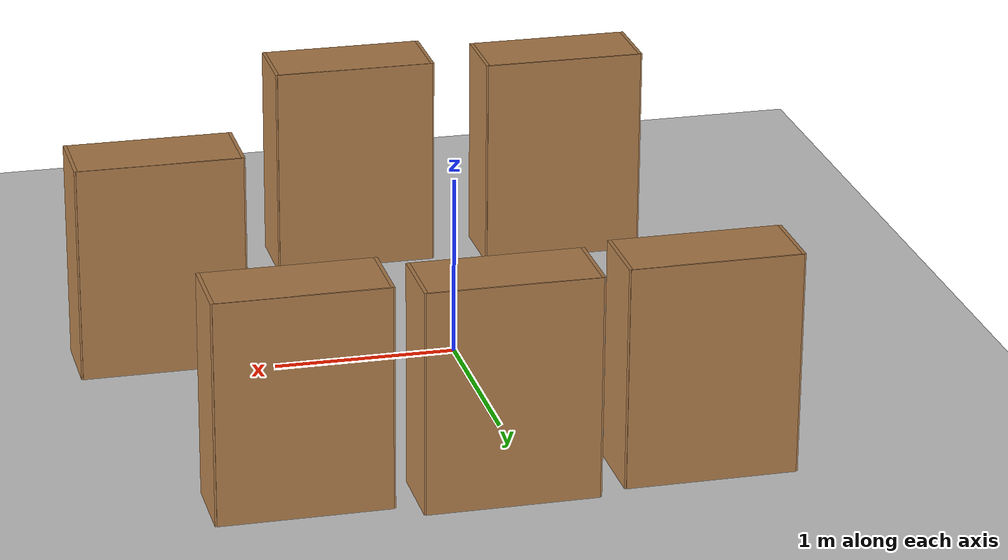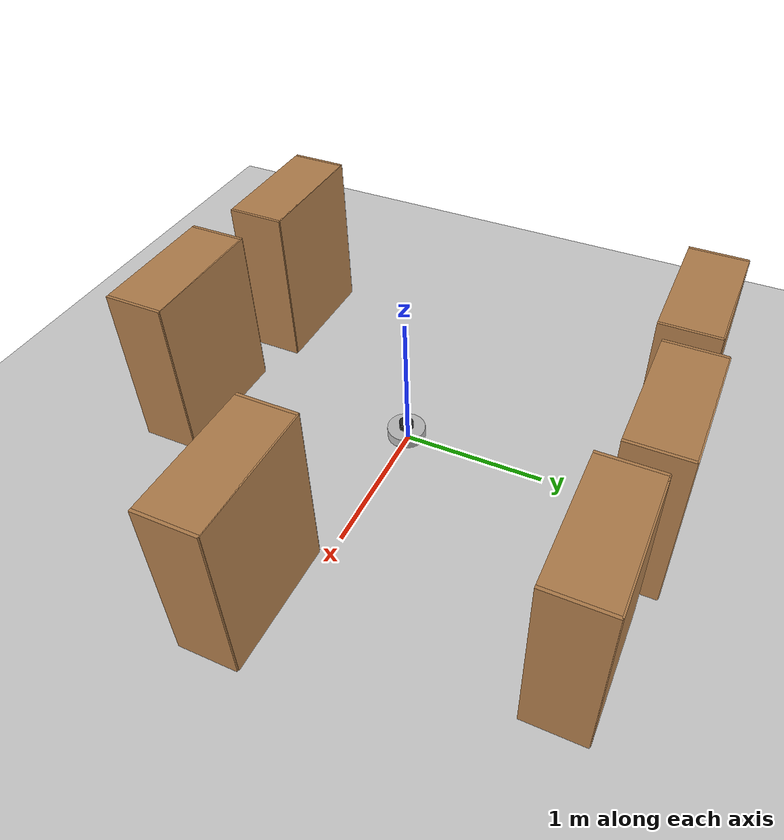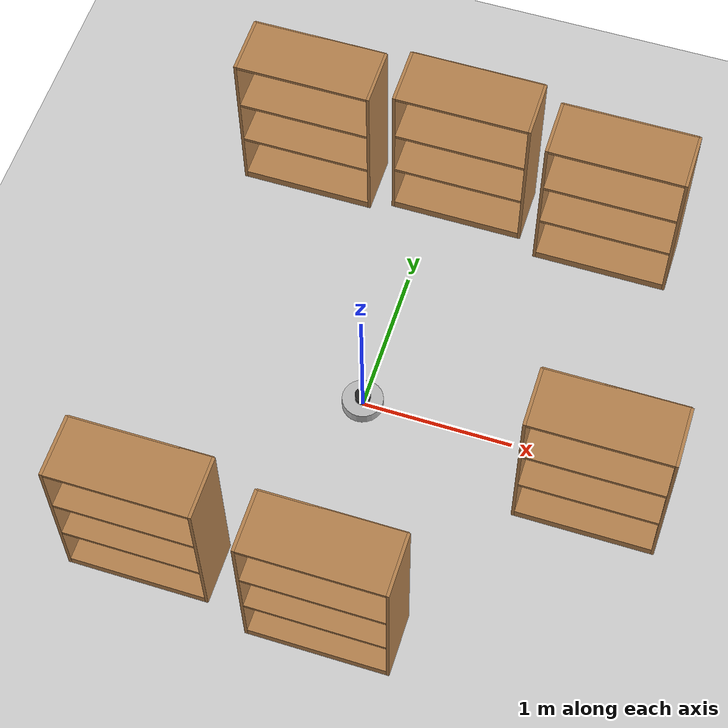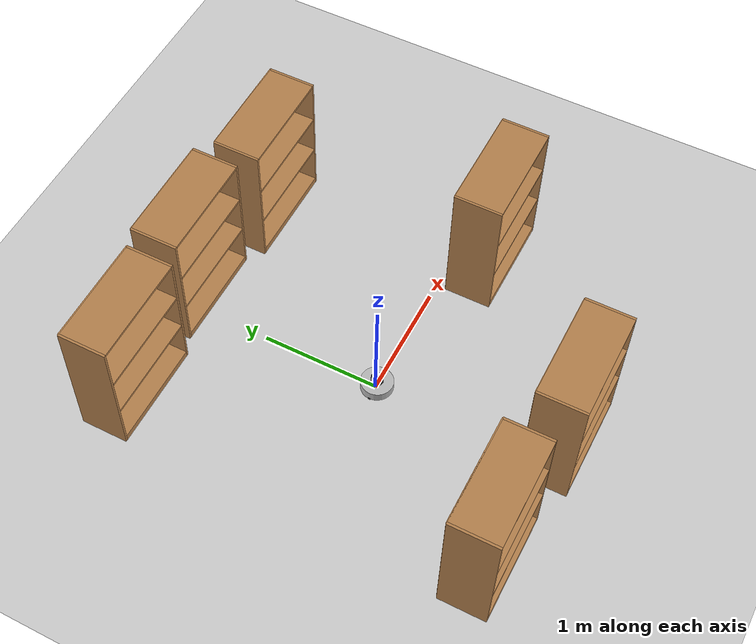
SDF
<sdf version="1.7">
 <world name="default">
  <light name="sun" type="directional">
   <pose>0 0 10 0 -0 0</pose>
   <diffuse>0.8 0.8 0.8 1</diffuse>
   <specular>0.2 0.2 0.2 1</specular>
   <attenuation>
    <range>1000</range>
    <constant>0.9</constant>
    <linear>0.01</linear>
    <quadratic>0.001</quadratic>
   </attenuation>
   <direction>-0.5 0.1 -0.9</direction>
   <spot><inner_angle>0</inner_angle><outer_angle>0</outer_angle><falloff>0</falloff></spot>
  </light>
  <model name="ground_plane">
   <static>1</static>
   <link name="link">
    <collision name="collision">
     <geometry><plane><normal>0 0 1</normal><size>100 100</size></plane></geometry>
     <surface><friction><ode><mu>100</mu><mu2>50</mu2></ode></friction></surface>
    </collision>
    <visual name="visual">
     <cast_shadows>0</cast_shadows>
     <geometry><plane><normal>0 0 1</normal><size>100 100</size></plane></geometry>
     <material>
      <script><uri>file://media/materials/scripts/gazebo.material</uri><name>Gazebo/Grey</name></script>
     </material>
    </visual>
   </link>
  </model>
  <gravity>0 0 -9.8</gravity>
  <magnetic_field>6e-06 2.3e-05 -4.2e-05</magnetic_field>
  <atmosphere type="adiabatic"/>
  <physics type="ode">
   <max_step_size>0.001</max_step_size>
   <real_time_factor>1</real_time_factor>
   <real_time_update_rate>1000</real_time_update_rate>
  </physics>
  <scene><ambient>0.4 0.4 0.4 1</ambient><background>0.7 0.7 0.7 1</background><shadows>1</shadows></scene>
  <audio><device>default</device></audio>
  <spherical_coordinates>
   <surface_model>EARTH_WGS84</surface_model>
   <latitude_deg>0</latitude_deg>
   <longitude_deg>0</longitude_deg>
   <elevation>0</elevation>
   <heading_deg>0</heading_deg>
  </spherical_coordinates>
  <model name="my_robot">
   <link name="base_link">
    <inertial>
     <pose>0 0.009931 0.019586 0 -0 0</pose>
     <mass>0.725</mass>
     <inertia>
      <ixx>0.00386635</ixx>
      <ixy>0</ixy>
      <ixz>0</ixz>
      <iyy>0.00668826</iyy>
      <iyz>-2.97931e-06</iyz>
      <izz>0.00761198</izz>
     </inertia>
    </inertial>
    <collision name="base_link_fixed_joint_lump__chassis_collision">
     <pose>0 0 0.02 0 -0 0</pose>
     <geometry><cylinder><length>0.078</length><radius>0.135</radius></cylinder></geometry>
    </collision>
    <collision name="base_link_fixed_joint_lump__caster_wheel_front_collision_1">
     <pose>0.12 0 -0.019 0 -0 0</pose>
     <geometry><sphere><radius>0.019</radius></sphere></geometry>
     <surface><friction><ode><mu>0.001</mu><mu2>0.001</mu2></ode></friction></surface>
    </collision>
    <collision name="base_link_fixed_joint_lump__caster_wheel_rear_collision_2">
     <pose>-0.12 0 -0.019 0 -0 0</pose>
     <geometry><sphere><radius>0.019</radius></sphere></geometry>
     <surface><friction><ode><mu>0.001</mu><mu2>0.001</mu2></ode></friction></surface>
    </collision>
    <collision name="base_link_fixed_joint_lump__lidar_link_collision_3">
     <pose>0 0 0.08 0 -0 0</pose>
     <geometry><cylinder><length>0.055</length><radius>0.0508</radius></cylinder></geometry>
    </collision>
    <visual name="base_link_fixed_joint_lump__chassis_visual">
     <pose>0 0 0.02 0 -0 0</pose>
     <geometry><cylinder><length>0.078</length><radius>0.135</radius></cylinder></geometry>
    </visual>
    <visual name="base_link_fixed_joint_lump__caster_wheel_front_visual_1">
     <pose>0.12 0 -0.019 0 -0 0</pose>
     <geometry><sphere><radius>0.019</radius></sphere></geometry>
     <material>
      <script><name>Gazebo/Black</name><uri>file://media/materials/scripts/gazebo.material</uri></script>
     </material>
    </visual>
    <visual name="base_link_fixed_joint_lump__caster_wheel_rear_visual_2">
     <pose>-0.12 0 -0.019 0 -0 0</pose>
     <geometry><sphere><radius>0.019</radius></sphere></geometry>
     <material>
      <script><name>Gazebo/Black</name><uri>file://media/materials/scripts/gazebo.material</uri></script>
     </material>
    </visual>
    <visual name="base_link_fixed_joint_lump__lidar_link_visual_3">
     <pose>0 0 0.08 0 -0 0</pose>
     <geometry><cylinder><length>0.055</length><radius>0.0508</radius></cylinder></geometry>
     <material>
      <script><name>Gazebo/Black</name><uri>file://media/materials/scripts/gazebo.material</uri></script>
     </material>
    </visual>
    <sensor name="lidar" type="ray">
     <always_on>1</always_on>
     <visualize>1</visualize>
     <update_rate>5</update_rate>
     <ray>
      <scan>
       <horizontal>
        <samples>360</samples>
        <resolution>1</resolution>
        <min_angle>0</min_angle>
        <max_angle>6.28</max_angle>
       </horizontal>
       <vertical><samples>1</samples><min_angle>0</min_angle><max_angle>0</max_angle></vertical>
      </scan>
      <range><min>0.12</min><max>3.5</max><resolution>0.015</resolution></range>
      <noise><type>gaussian</type><mean>0</mean><stddev>0.01</stddev></noise>
     </ray>
     <plugin name="scan" filename="libgazebo_ros_ray_sensor.so">
      <ros><remapping>~/out:=scan</remapping></ros>
      <output_type>sensor_msgs/LaserScan</output_type>
      <frame_name>lidar_link</frame_name>
     </plugin>
     <pose>0 0 0.08 0 -0 0</pose>
    </sensor>
   </link>
   <joint name="left_wheel_joint" type="revolute">
    <pose relative_to="base_link">0 0.078 0 -1.5708 0 0</pose>
    <parent>base_link</parent>
    <child>left_wheel</child>
    <axis>
     <xyz>0 0 1</xyz>
     <limit><lower>-1e+16</lower><upper>1e+16</upper></limit>
     <dynamics><spring_reference>0</spring_reference><spring_stiffness>0</spring_stiffness></dynamics>
    </axis>
   </joint>
   <link name="left_wheel">
    <pose relative_to="left_wheel_joint">0 0 0 0 -0 0</pose>
    <inertial>
     <mass>0.1</mass>
     <inertia>
      <ixx>4.05333e-05</ixx>
      <ixy>0</ixy>
      <ixz>0</ixz>
      <iyy>4.05333e-05</iyy>
      <iyz>0</iyz>
      <izz>8e-05</izz>
     </inertia>
    </inertial>
    <collision name="left_wheel_collision">
     <geometry><cylinder><length>0.008</length><radius>0.04</radius></cylinder></geometry>
    </collision>
    <visual name="left_wheel_visual">
     <geometry><cylinder><length>0.008</length><radius>0.04</radius></cylinder></geometry>
     <material>
      <script><name>Gazebo/Black</name><uri>file://media/materials/scripts/gazebo.material</uri></script>
     </material>
    </visual>
   </link>
   <joint name="right_wheel_joint" type="revolute">
    <pose relative_to="base_link">0 -0.078 0 1.5708 -0 0</pose>
    <parent>base_link</parent>
    <child>right_wheel</child>
    <axis>
     <xyz>0 0 -1</xyz>
     <limit><lower>-1e+16</lower><upper>1e+16</upper></limit>
     <dynamics><spring_reference>0</spring_reference><spring_stiffness>0</spring_stiffness></dynamics>
    </axis>
   </joint>
   <link name="right_wheel">
    <pose relative_to="right_wheel_joint">0 0 0 0 -0 0</pose>
    <inertial>
     <mass>0.05</mass>
     <inertia>
      <ixx>2.02667e-05</ixx>
      <ixy>0</ixy>
      <ixz>0</ixz>
      <iyy>2.02667e-05</iyy>
      <iyz>0</iyz>
      <izz>4e-05</izz>
     </inertia>
    </inertial>
    <collision name="right_wheel_collision">
     <geometry><cylinder><length>0.008</length><radius>0.04</radius></cylinder></geometry>
    </collision>
    <visual name="right_wheel_visual">
     <geometry><cylinder><length>0.008</length><radius>0.04</radius></cylinder></geometry>
     <material>
      <script><name>Gazebo/Black</name><uri>file://media/materials/scripts/gazebo.material</uri></script>
     </material>
    </visual>
   </link>
   <static>0</static>
   <plugin name="gazebo_ros2_control" filename="libgazebo_ros2_control.so">
    <parameters>/home/asaf/ros2_ws/install/navigation_diffbot/share/navigation_diffbot/config/my_controllers3.yaml</parameters>
   </plugin>
   <pose>0.001074 -0.011462 0.04 -1e-06 0.016691 0.000367</pose>
  </model>
  <model name="bookshelf">
   <static>1</static>
   <link name="link">
    <inertial><mass>1</mass></inertial>
    <collision name="back">
     <pose>0 0.005 0.6 0 -0 0</pose>
     <geometry><box><size>0.9 0.01 1.2</size></box></geometry>
    </collision>
    <visual name="visual1">
     <pose>0 0.005 0.6 0 -0 0</pose>
     <geometry><box><size>0.9 0.01 1.2</size></box></geometry>
     <material>
      <script><uri>file://media/materials/scripts/gazebo.material</uri><name>Gazebo/Wood</name></script>
     </material>
    </visual>
    <collision name="left_side">
     <pose>0.45 -0.195 0.6 0 -0 0</pose>
     <geometry><box><size>0.02 0.4 1.2</size></box></geometry>
    </collision>
    <visual name="visual2">
     <pose>0.45 -0.195 0.6 0 -0 0</pose>
     <geometry><box><size>0.02 0.4 1.2</size></box></geometry>
     <material>
      <script><uri>file://media/materials/scripts/gazebo.material</uri><name>Gazebo/Wood</name></script>
     </material>
    </visual>
    <collision name="right_side">
     <pose>-0.45 -0.195 0.6 0 -0 0</pose>
     <geometry><box><size>0.02 0.4 1.2</size></box></geometry>
    </collision>
    <visual name="visual3">
     <pose>-0.45 -0.195 0.6 0 -0 0</pose>
     <geometry><box><size>0.02 0.4 1.2</size></box></geometry>
     <material>
      <script><uri>file://media/materials/scripts/gazebo.material</uri><name>Gazebo/Wood</name></script>
     </material>
    </visual>
    <collision name="bottom">
     <pose>0 -0.195 0.03 0 -0 0</pose>
     <geometry><box><size>0.88 0.4 0.06</size></box></geometry>
    </collision>
    <visual name="visual4">
     <pose>0 -0.195 0.03 0 -0 0</pose>
     <geometry><box><size>0.88 0.4 0.06</size></box></geometry>
     <material>
      <script><uri>file://media/materials/scripts/gazebo.material</uri><name>Gazebo/Wood</name></script>
     </material>
    </visual>
    <collision name="top">
     <pose>0 -0.195 1.19 0 -0 0</pose>
     <geometry><box><size>0.88 0.4 0.02</size></box></geometry>
    </collision>
    <visual name="visual5">
     <pose>0 -0.195 1.19 0 -0 0</pose>
     <geometry><box><size>0.88 0.4 0.02</size></box></geometry>
     <material>
      <script><uri>file://media/materials/scripts/gazebo.material</uri><name>Gazebo/Wood</name></script>
     </material>
    </visual>
    <collision name="low_shelf">
     <pose>0 -0.195 0.43 0 -0 0</pose>
     <geometry><box><size>0.88 0.4 0.02</size></box></geometry>
    </collision>
    <visual name="visual6">
     <pose>0 -0.195 0.43 0 -0 0</pose>
     <geometry><box><size>0.88 0.4 0.02</size></box></geometry>
     <material>
      <script><uri>file://media/materials/scripts/gazebo.material</uri><name>Gazebo/Wood</name></script>
     </material>
    </visual>
    <collision name="high_shelf">
     <pose>0 -0.195 0.8 0 -0 0</pose>
     <geometry><box><size>0.88 0.4 0.02</size></box></geometry>
    </collision>
    <visual name="visual7">
     <pose>0 -0.195 0.8 0 -0 0</pose>
     <geometry><box><size>0.88 0.4 0.02</size></box></geometry>
     <material>
      <script><uri>file://media/materials/scripts/gazebo.material</uri><name>Gazebo/Wood</name></script>
     </material>
    </visual>
   </link>
   <pose>0.168341 1.94579 0 0 -0 0</pose>
  </model>
  <model name="bookshelf_0">
   <static>1</static>
   <link name="link">
    <inertial><mass>1</mass></inertial>
    <collision name="back">
     <pose>0 0.005 0.6 0 -0 0</pose>
     <geometry><box><size>0.9 0.01 1.2</size></box></geometry>
    </collision>
    <visual name="visual1">
     <pose>0 0.005 0.6 0 -0 0</pose>
     <geometry><box><size>0.9 0.01 1.2</size></box></geometry>
     <material>
      <script><uri>file://media/materials/scripts/gazebo.material</uri><name>Gazebo/Wood</name></script>
     </material>
    </visual>
    <collision name="left_side">
     <pose>0.45 -0.195 0.6 0 -0 0</pose>
     <geometry><box><size>0.02 0.4 1.2</size></box></geometry>
    </collision>
    <visual name="visual2">
     <pose>0.45 -0.195 0.6 0 -0 0</pose>
     <geometry><box><size>0.02 0.4 1.2</size></box></geometry>
     <material>
      <script><uri>file://media/materials/scripts/gazebo.material</uri><name>Gazebo/Wood</name></script>
     </material>
    </visual>
    <collision name="right_side">
     <pose>-0.45 -0.195 0.6 0 -0 0</pose>
     <geometry><box><size>0.02 0.4 1.2</size></box></geometry>
    </collision>
    <visual name="visual3">
     <pose>-0.45 -0.195 0.6 0 -0 0</pose>
     <geometry><box><size>0.02 0.4 1.2</size></box></geometry>
     <material>
      <script><uri>file://media/materials/scripts/gazebo.material</uri><name>Gazebo/Wood</name></script>
     </material>
    </visual>
    <collision name="bottom">
     <pose>0 -0.195 0.03 0 -0 0</pose>
     <geometry><box><size>0.88 0.4 0.06</size></box></geometry>
    </collision>
    <visual name="visual4">
     <pose>0 -0.195 0.03 0 -0 0</pose>
     <geometry><box><size>0.88 0.4 0.06</size></box></geometry>
     <material>
      <script><uri>file://media/materials/scripts/gazebo.material</uri><name>Gazebo/Wood</name></script>
     </material>
    </visual>
    <collision name="top">
     <pose>0 -0.195 1.19 0 -0 0</pose>
     <geometry><box><size>0.88 0.4 0.02</size></box></geometry>
    </collision>
    <visual name="visual5">
     <pose>0 -0.195 1.19 0 -0 0</pose>
     <geometry><box><size>0.88 0.4 0.02</size></box></geometry>
     <material>
      <script><uri>file://media/materials/scripts/gazebo.material</uri><name>Gazebo/Wood</name></script>
     </material>
    </visual>
    <collision name="low_shelf">
     <pose>0 -0.195 0.43 0 -0 0</pose>
     <geometry><box><size>0.88 0.4 0.02</size></box></geometry>
    </collision>
    <visual name="visual6">
     <pose>0 -0.195 0.43 0 -0 0</pose>
     <geometry><box><size>0.88 0.4 0.02</size></box></geometry>
     <material>
      <script><uri>file://media/materials/scripts/gazebo.material</uri><name>Gazebo/Wood</name></script>
     </material>
    </visual>
    <collision name="high_shelf">
     <pose>0 -0.195 0.8 0 -0 0</pose>
     <geometry><box><size>0.88 0.4 0.02</size></box></geometry>
    </collision>
    <visual name="visual7">
     <pose>0 -0.195 0.8 0 -0 0</pose>
     <geometry><box><size>0.88 0.4 0.02</size></box></geometry>
     <material>
      <script><uri>file://media/materials/scripts/gazebo.material</uri><name>Gazebo/Wood</name></script>
     </material>
    </visual>
   </link>
   <pose>1.20812 1.83612 0 0 -0 0</pose>
  </model>
  <model name="bookshelf_1">
   <static>1</static>
   <link name="link">
    <inertial><mass>1</mass></inertial>
    <collision name="back">
     <pose>0 0.005 0.6 0 -0 0</pose>
     <geometry><box><size>0.9 0.01 1.2</size></box></geometry>
    </collision>
    <visual name="visual1">
     <pose>0 0.005 0.6 0 -0 0</pose>
     <geometry><box><size>0.9 0.01 1.2</size></box></geometry>
     <material>
      <script><uri>file://media/materials/scripts/gazebo.material</uri><name>Gazebo/Wood</name></script>
     </material>
    </visual>
    <collision name="left_side">
     <pose>0.45 -0.195 0.6 0 -0 0</pose>
     <geometry><box><size>0.02 0.4 1.2</size></box></geometry>
    </collision>
    <visual name="visual2">
     <pose>0.45 -0.195 0.6 0 -0 0</pose>
     <geometry><box><size>0.02 0.4 1.2</size></box></geometry>
     <material>
      <script><uri>file://media/materials/scripts/gazebo.material</uri><name>Gazebo/Wood</name></script>
     </material>
    </visual>
    <collision name="right_side">
     <pose>-0.45 -0.195 0.6 0 -0 0</pose>
     <geometry><box><size>0.02 0.4 1.2</size></box></geometry>
    </collision>
    <visual name="visual3">
     <pose>-0.45 -0.195 0.6 0 -0 0</pose>
     <geometry><box><size>0.02 0.4 1.2</size></box></geometry>
     <material>
      <script><uri>file://media/materials/scripts/gazebo.material</uri><name>Gazebo/Wood</name></script>
     </material>
    </visual>
    <collision name="bottom">
     <pose>0 -0.195 0.03 0 -0 0</pose>
     <geometry><box><size>0.88 0.4 0.06</size></box></geometry>
    </collision>
    <visual name="visual4">
     <pose>0 -0.195 0.03 0 -0 0</pose>
     <geometry><box><size>0.88 0.4 0.06</size></box></geometry>
     <material>
      <script><uri>file://media/materials/scripts/gazebo.material</uri><name>Gazebo/Wood</name></script>
     </material>
    </visual>
    <collision name="top">
     <pose>0 -0.195 1.19 0 -0 0</pose>
     <geometry><box><size>0.88 0.4 0.02</size></box></geometry>
    </collision>
    <visual name="visual5">
     <pose>0 -0.195 1.19 0 -0 0</pose>
     <geometry><box><size>0.88 0.4 0.02</size></box></geometry>
     <material>
      <script><uri>file://media/materials/scripts/gazebo.material</uri><name>Gazebo/Wood</name></script>
     </material>
    </visual>
    <collision name="low_shelf">
     <pose>0 -0.195 0.43 0 -0 0</pose>
     <geometry><box><size>0.88 0.4 0.02</size></box></geometry>
    </collision>
    <visual name="visual6">
     <pose>0 -0.195 0.43 0 -0 0</pose>
     <geometry><box><size>0.88 0.4 0.02</size></box></geometry>
     <material>
      <script><uri>file://media/materials/scripts/gazebo.material</uri><name>Gazebo/Wood</name></script>
     </material>
    </visual>
    <collision name="high_shelf">
     <pose>0 -0.195 0.8 0 -0 0</pose>
     <geometry><box><size>0.88 0.4 0.02</size></box></geometry>
    </collision>
    <visual name="visual7">
     <pose>0 -0.195 0.8 0 -0 0</pose>
     <geometry><box><size>0.88 0.4 0.02</size></box></geometry>
     <material>
      <script><uri>file://media/materials/scripts/gazebo.material</uri><name>Gazebo/Wood</name></script>
     </material>
    </visual>
   </link>
   <pose>-0.887187 1.88272 0 0 -0 0</pose>
  </model>
  <model name="bookshelf_2">
   <static>1</static>
   <link name="link">
    <inertial><mass>1</mass></inertial>
    <collision name="back">
     <pose>0 0.005 0.6 0 -0 0</pose>
     <geometry><box><size>0.9 0.01 1.2</size></box></geometry>
    </collision>
    <visual name="visual1">
     <pose>0 0.005 0.6 0 -0 0</pose>
     <geometry><box><size>0.9 0.01 1.2</size></box></geometry>
     <material>
      <script><uri>file://media/materials/scripts/gazebo.material</uri><name>Gazebo/Wood</name></script>
     </material>
    </visual>
    <collision name="left_side">
     <pose>0.45 -0.195 0.6 0 -0 0</pose>
     <geometry><box><size>0.02 0.4 1.2</size></box></geometry>
    </collision>
    <visual name="visual2">
     <pose>0.45 -0.195 0.6 0 -0 0</pose>
     <geometry><box><size>0.02 0.4 1.2</size></box></geometry>
     <material>
      <script><uri>file://media/materials/scripts/gazebo.material</uri><name>Gazebo/Wood</name></script>
     </material>
    </visual>
    <collision name="right_side">
     <pose>-0.45 -0.195 0.6 0 -0 0</pose>
     <geometry><box><size>0.02 0.4 1.2</size></box></geometry>
    </collision>
    <visual name="visual3">
     <pose>-0.45 -0.195 0.6 0 -0 0</pose>
     <geometry><box><size>0.02 0.4 1.2</size></box></geometry>
     <material>
      <script><uri>file://media/materials/scripts/gazebo.material</uri><name>Gazebo/Wood</name></script>
     </material>
    </visual>
    <collision name="bottom">
     <pose>0 -0.195 0.03 0 -0 0</pose>
     <geometry><box><size>0.88 0.4 0.06</size></box></geometry>
    </collision>
    <visual name="visual4">
     <pose>0 -0.195 0.03 0 -0 0</pose>
     <geometry><box><size>0.88 0.4 0.06</size></box></geometry>
     <material>
      <script><uri>file://media/materials/scripts/gazebo.material</uri><name>Gazebo/Wood</name></script>
     </material>
    </visual>
    <collision name="top">
     <pose>0 -0.195 1.19 0 -0 0</pose>
     <geometry><box><size>0.88 0.4 0.02</size></box></geometry>
    </collision>
    <visual name="visual5">
     <pose>0 -0.195 1.19 0 -0 0</pose>
     <geometry><box><size>0.88 0.4 0.02</size></box></geometry>
     <material>
      <script><uri>file://media/materials/scripts/gazebo.material</uri><name>Gazebo/Wood</name></script>
     </material>
    </visual>
    <collision name="low_shelf">
     <pose>0 -0.195 0.43 0 -0 0</pose>
     <geometry><box><size>0.88 0.4 0.02</size></box></geometry>
    </collision>
    <visual name="visual6">
     <pose>0 -0.195 0.43 0 -0 0</pose>
     <geometry><box><size>0.88 0.4 0.02</size></box></geometry>
     <material>
      <script><uri>file://media/materials/scripts/gazebo.material</uri><name>Gazebo/Wood</name></script>
     </material>
    </visual>
    <collision name="high_shelf">
     <pose>0 -0.195 0.8 0 -0 0</pose>
     <geometry><box><size>0.88 0.4 0.02</size></box></geometry>
    </collision>
    <visual name="visual7">
     <pose>0 -0.195 0.8 0 -0 0</pose>
     <geometry><box><size>0.88 0.4 0.02</size></box></geometry>
     <material>
      <script><uri>file://media/materials/scripts/gazebo.material</uri><name>Gazebo/Wood</name></script>
     </material>
    </visual>
   </link>
   <pose>-0.938003 -1.21336 0 0 -0 0</pose>
  </model>
  <model name="bookshelf_3">
   <static>1</static>
   <link name="link">
    <inertial><mass>1</mass></inertial>
    <collision name="back">
     <pose>0 0.005 0.6 0 -0 0</pose>
     <geometry><box><size>0.9 0.01 1.2</size></box></geometry>
    </collision>
    <visual name="visual1">
     <pose>0 0.005 0.6 0 -0 0</pose>
     <geometry><box><size>0.9 0.01 1.2</size></box></geometry>
     <material>
      <script><uri>file://media/materials/scripts/gazebo.material</uri><name>Gazebo/Wood</name></script>
     </material>
    </visual>
    <collision name="left_side">
     <pose>0.45 -0.195 0.6 0 -0 0</pose>
     <geometry><box><size>0.02 0.4 1.2</size></box></geometry>
    </collision>
    <visual name="visual2">
     <pose>0.45 -0.195 0.6 0 -0 0</pose>
     <geometry><box><size>0.02 0.4 1.2</size></box></geometry>
     <material>
      <script><uri>file://media/materials/scripts/gazebo.material</uri><name>Gazebo/Wood</name></script>
     </material>
    </visual>
    <collision name="right_side">
     <pose>-0.45 -0.195 0.6 0 -0 0</pose>
     <geometry><box><size>0.02 0.4 1.2</size></box></geometry>
    </collision>
    <visual name="visual3">
     <pose>-0.45 -0.195 0.6 0 -0 0</pose>
     <geometry><box><size>0.02 0.4 1.2</size></box></geometry>
     <material>
      <script><uri>file://media/materials/scripts/gazebo.material</uri><name>Gazebo/Wood</name></script>
     </material>
    </visual>
    <collision name="bottom">
     <pose>0 -0.195 0.03 0 -0 0</pose>
     <geometry><box><size>0.88 0.4 0.06</size></box></geometry>
    </collision>
    <visual name="visual4">
     <pose>0 -0.195 0.03 0 -0 0</pose>
     <geometry><box><size>0.88 0.4 0.06</size></box></geometry>
     <material>
      <script><uri>file://media/materials/scripts/gazebo.material</uri><name>Gazebo/Wood</name></script>
     </material>
    </visual>
    <collision name="top">
     <pose>0 -0.195 1.19 0 -0 0</pose>
     <geometry><box><size>0.88 0.4 0.02</size></box></geometry>
    </collision>
    <visual name="visual5">
     <pose>0 -0.195 1.19 0 -0 0</pose>
     <geometry><box><size>0.88 0.4 0.02</size></box></geometry>
     <material>
      <script><uri>file://media/materials/scripts/gazebo.material</uri><name>Gazebo/Wood</name></script>
     </material>
    </visual>
    <collision name="low_shelf">
     <pose>0 -0.195 0.43 0 -0 0</pose>
     <geometry><box><size>0.88 0.4 0.02</size></box></geometry>
    </collision>
    <visual name="visual6">
     <pose>0 -0.195 0.43 0 -0 0</pose>
     <geometry><box><size>0.88 0.4 0.02</size></box></geometry>
     <material>
      <script><uri>file://media/materials/scripts/gazebo.material</uri><name>Gazebo/Wood</name></script>
     </material>
    </visual>
    <collision name="high_shelf">
     <pose>0 -0.195 0.8 0 -0 0</pose>
     <geometry><box><size>0.88 0.4 0.02</size></box></geometry>
    </collision>
    <visual name="visual7">
     <pose>0 -0.195 0.8 0 -0 0</pose>
     <geometry><box><size>0.88 0.4 0.02</size></box></geometry>
     <material>
      <script><uri>file://media/materials/scripts/gazebo.material</uri><name>Gazebo/Wood</name></script>
     </material>
    </visual>
   </link>
   <pose>0.260723 -1.32991 0 0 -0 0</pose>
  </model>
  <model name="bookshelf_4">
   <static>1</static>
   <link name="link">
    <inertial><mass>1</mass></inertial>
    <collision name="back">
     <pose>0 0.005 0.6 0 -0 0</pose>
     <geometry><box><size>0.9 0.01 1.2</size></box></geometry>
    </collision>
    <visual name="visual1">
     <pose>0 0.005 0.6 0 -0 0</pose>
     <geometry><box><size>0.9 0.01 1.2</size></box></geometry>
     <material>
      <script><uri>file://media/materials/scripts/gazebo.material</uri><name>Gazebo/Wood</name></script>
     </material>
    </visual>
    <collision name="left_side">
     <pose>0.45 -0.195 0.6 0 -0 0</pose>
     <geometry><box><size>0.02 0.4 1.2</size></box></geometry>
    </collision>
    <visual name="visual2">
     <pose>0.45 -0.195 0.6 0 -0 0</pose>
     <geometry><box><size>0.02 0.4 1.2</size></box></geometry>
     <material>
      <script><uri>file://media/materials/scripts/gazebo.material</uri><name>Gazebo/Wood</name></script>
     </material>
    </visual>
    <collision name="right_side">
     <pose>-0.45 -0.195 0.6 0 -0 0</pose>
     <geometry><box><size>0.02 0.4 1.2</size></box></geometry>
    </collision>
    <visual name="visual3">
     <pose>-0.45 -0.195 0.6 0 -0 0</pose>
     <geometry><box><size>0.02 0.4 1.2</size></box></geometry>
     <material>
      <script><uri>file://media/materials/scripts/gazebo.material</uri><name>Gazebo/Wood</name></script>
     </material>
    </visual>
    <collision name="bottom">
     <pose>0 -0.195 0.03 0 -0 0</pose>
     <geometry><box><size>0.88 0.4 0.06</size></box></geometry>
    </collision>
    <visual name="visual4">
     <pose>0 -0.195 0.03 0 -0 0</pose>
     <geometry><box><size>0.88 0.4 0.06</size></box></geometry>
     <material>
      <script><uri>file://media/materials/scripts/gazebo.material</uri><name>Gazebo/Wood</name></script>
     </material>
    </visual>
    <collision name="top">
     <pose>0 -0.195 1.19 0 -0 0</pose>
     <geometry><box><size>0.88 0.4 0.02</size></box></geometry>
    </collision>
    <visual name="visual5">
     <pose>0 -0.195 1.19 0 -0 0</pose>
     <geometry><box><size>0.88 0.4 0.02</size></box></geometry>
     <material>
      <script><uri>file://media/materials/scripts/gazebo.material</uri><name>Gazebo/Wood</name></script>
     </material>
    </visual>
    <collision name="low_shelf">
     <pose>0 -0.195 0.43 0 -0 0</pose>
     <geometry><box><size>0.88 0.4 0.02</size></box></geometry>
    </collision>
    <visual name="visual6">
     <pose>0 -0.195 0.43 0 -0 0</pose>
     <geometry><box><size>0.88 0.4 0.02</size></box></geometry>
     <material>
      <script><uri>file://media/materials/scripts/gazebo.material</uri><name>Gazebo/Wood</name></script>
     </material>
    </visual>
    <collision name="high_shelf">
     <pose>0 -0.195 0.8 0 -0 0</pose>
     <geometry><box><size>0.88 0.4 0.02</size></box></geometry>
    </collision>
    <visual name="visual7">
     <pose>0 -0.195 0.8 0 -0 0</pose>
     <geometry><box><size>0.88 0.4 0.02</size></box></geometry>
     <material>
      <script><uri>file://media/materials/scripts/gazebo.material</uri><name>Gazebo/Wood</name></script>
     </material>
    </visual>
   </link>
   <pose>1.59019 -0.081897 0 0 -0 0</pose>
  </model>
 </world>
</sdf>
